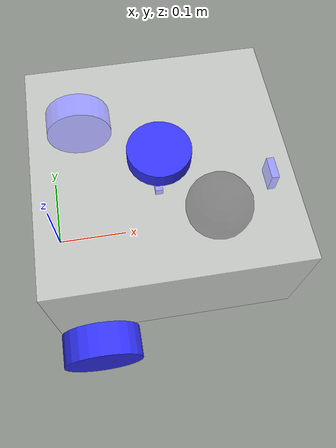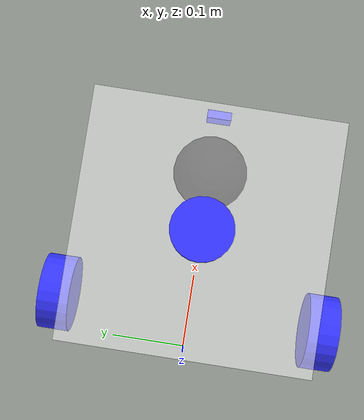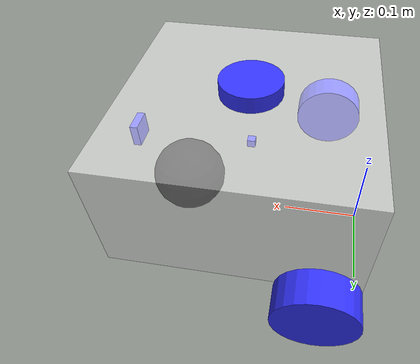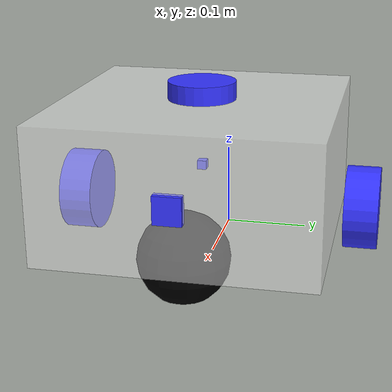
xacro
<?xml version="1.0" encoding="utf-8"?>
<robot xmlns:xacro="http://www.ros.org/wiki/xacro"  name="bbot_robot">

  <xacro:include filename="bbot_description.xacro"/>

  <xacro:include filename="bbot_ros2_control.xacro"/>

    <xacro:include filename="lidar.xacro"/>
    <xacro:include filename="carmer.xacro"/>
    <xacro:include filename="imu.xacro"/>

  <xacro:bbot_ros2_control/>
  <xacro:bbot_lidar/>
  <xacro:bbot_carmer/>
  <xacro:bbot_imu/>

</robot>

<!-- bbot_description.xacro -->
<robot xmlns:xacro="http://www.ros.org/wiki/xacro" >
  <xacro:include filename="inertial_macros.xacro"/>

  <material name="white">
    <color rgba="1 1 1 0.5"/>
  </material>

  <material name="orange">
    <color rgba="1 0.3 0.1 1"/>
  </material>

  <material name="blue">
    <color rgba="0.2 0.2 1 1"/>
  </material>

  <material name="black">
    <color rgba="0 0 0 1"/>
  </material>

  <!-- BASE LINK  -->
  <link name="base_footprint">

  </link>

  <!-- base_link -->
  <joint name="base_joint" type="fixed">
    <parent link="base_footprint"/>
    <child link="base_link"/>
    <origin xyz="0 0 0.05"/>
  </joint>

  <link name="base_link">
    <visual>
      <origin xyz="0.15 0 0.075"/>
      <geometry>
        <box size="0.3 0.3 0.15"/>
      </geometry>
      <material name="white"/>
    </visual>
    <collision>
      <origin xyz="0.15 0 0.075"/>
      <geometry>
        <box size="0.3 0.3 0.15"/>
      </geometry>
    </collision>
    <xacro:inertial_box mass="0.5" x="0.3" y="0.3" z="0.15">
      <origin xyz="0.15 0 0.075" rpy="0 0 0"/>
    </xacro:inertial_box>
  </link>

  <!-- imu -->
  <joint name="imu_joint" type="fixed">
    <parent link="base_link"/>
    <child link="imu"/>
    <origin xyz="0.15 0 0.075"/>
  </joint>

  <link name="imu">
    <material>Gazebo/Blue</material>
    <visual>
      <origin xyz="0.0 0 0.0"/>
      <geometry>
        <box size="0.01 0.01 0.01"/>
      </geometry>
      <material name="blue"/>
    </visual>
    <collision>
      <geometry>
        <box size="0.01 0.01 0.01"/>
      </geometry>
    </collision>
    <xacro:inertial_box mass="0.001" x="0.01" y="0.01" z="0.1">
      <origin xyz="0.15 0 0.0375" rpy="0 0 0"/>
    </xacro:inertial_box>
  </link>

  <!-- carmer -->
  <joint name="carmer_joint" type="fixed">
    <parent link="base_link"/>
    <child link="carmer"/>
    <origin xyz="0.30 0 0.075"/>
  </joint>

  <link name="carmer">
    <material>Gazebo/Blue</material>
    <visual>
      <origin xyz="0.0 0 0.0"/>
      <geometry>
        <box size="0.01 0.03 0.03"/>
      </geometry>
      <material name="blue"/>
    </visual>
    <collision>
      <geometry>
        <box size="0.01 0.03 0.03"/>
      </geometry>
    </collision>
    <xacro:inertial_box mass="0.05" x="0.01" y="0.03" z="0.03">
      <origin xyz="0.15 0 0.0375" rpy="0 0 0"/>
    </xacro:inertial_box>
  </link>

  <!-- laser -->
  <joint name="laser_joint" type="fixed">
    <parent link="base_link"/>
    <child link="laser"/>
    <origin xyz="0.15 0 0.16"/>
  </joint>

  <link name="laser">
    <material>Gazebo/Blue</material>
    <visual>
      <origin xyz="0.0 0 0.0"/>
      <geometry>
        <cylinder radius="0.0375" length="0.02"/>
      </geometry>
      <material name="blue"/>
    </visual>
    <collision>
      <origin xyz="0.15 0 0.375"/>
      <geometry>
        <cylinder radius="0.0375" length="0.02"/>
      </geometry>
    </collision>
    <xacro:inertial_cylinder mass="0.1" radius="0.0375" length="0.02">
      <origin xyz="0.15 0 0.0375" rpy="0 0 0"/>
    </xacro:inertial_cylinder>
  </link>

  <!-- left_wheel -->

  <joint name="left_wheel_joint" type="continuous">
    <parent link="base_link"/>
    <child link="left_wheel"/>
    <origin xyz="0.05 0.175 0" rpy="-${pi/2} 0 0"/>
    <axis xyz="0 0 1"/>
  </joint>

  <link name="left_wheel">
    <visual>
      <geometry>
        <cylinder radius="0.05" length="0.04"/>
      </geometry>
      <material name="blue"/>
    </visual>
    <collision>
      <geometry>
        <cylinder radius="0.05" length="0.04"/>
      </geometry>
    </collision>
    <xacro:inertial_cylinder mass="0.1" length="0.04" radius="0.05">
      <origin xyz="0 0 0" rpy="0 0 0"/>
    </xacro:inertial_cylinder>
  </link>

  <!-- right_wheel -->

  <joint name="right_wheel_joint" type="continuous">
    <parent link="base_link"/>
    <child link="right_wheel"/>
    <origin xyz="0.05 -0.175 0" rpy="${pi/2} 0 0"/>
    <axis xyz="0 0 -1"/>
  </joint>

  <link name="right_wheel">
    <visual>
      <geometry>
        <cylinder radius="0.05" length="0.04"/>
      </geometry>
      <material name="blue"/>
    </visual>
    <collision>
      <geometry>
        <cylinder radius="0.05" length="0.04"/>
      </geometry>
    </collision>
    <xacro:inertial_cylinder mass="0.1" length="0.04" radius="0.05">
      <origin xyz="0 0 0" rpy="0 0 0"/>
    </xacro:inertial_cylinder>
  </link>

  <joint name="caster_wheel_joint" type="fixed">
    <parent link="base_link"/>
    <child link="caster_wheel"/>
    <origin xyz="0.24 0 0"/>
  </joint>

  <link name="caster_wheel">
    <visual>
      <geometry>
        <sphere radius="0.05"/>
      </geometry>
      <material name="black"/>
    </visual>
    <collision>
      <geometry>
        <sphere radius="0.05"/>
      </geometry>
    </collision>
    <xacro:inertial_sphere mass="0.1" radius="0.05">
      <origin xyz="0 0 0" rpy="0 0 0"/>
    </xacro:inertial_sphere>
  </link>

  <gazebo reference="caster_wheel">
    <material>Gazebo/Black</material>
    <mu1 value="0.001"/>
    <mu2 value="0.001"/>
  </gazebo>
</robot>
